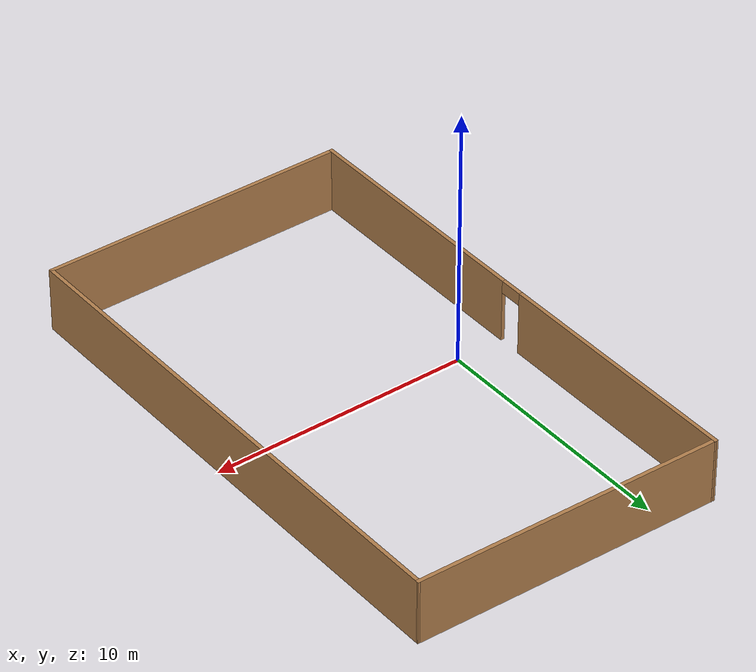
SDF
<?xml version='1.0'?>
<sdf version='1.7'>
  <model name='world_v1'>
    <pose>3.96468 0.542724 0 0 -0 0</pose>
    <link name='Wall_15'>
      <pose>-5.925 -0.000782 0 0 -0 -1.5708</pose>
      <visual name='Wall_15_Visual_0'>
        <pose>-5.35453 0 1.25 0 -0 0</pose>
        <geometry>
          <box>
            <size>10.0409 0.15 2.5</size>
          </box>
        </geometry>
        <material>
          <script>
            <uri>file://media/materials/scripts/gazebo.material</uri>
            <name>Gazebo/Wood</name>
          </script>
          <ambient>1 1 1 1</ambient>
        </material>
        <meta>
          <layer>0</layer>
        </meta>
      </visual>
      <collision name='Wall_15_Collision_0'>
        <geometry>
          <box>
            <size>10.0409 0.15 2.5</size>
          </box>
        </geometry>
        <pose>-5.35453 0 1.25 0 -0 0</pose>
      </collision>
      <visual name='Wall_15_Visual_1'>
        <pose>5.47047 0 1.25 0 -0 0</pose>
        <geometry>
          <box>
            <size>9.80906 0.15 2.5</size>
          </box>
        </geometry>
        <material>
          <script>
            <uri>file://media/materials/scripts/gazebo.material</uri>
            <name>Gazebo/Wood</name>
          </script>
          <ambient>1 1 1 1</ambient>
        </material>
        <meta>
          <layer>0</layer>
        </meta>
      </visual>
      <collision name='Wall_15_Collision_1'>
        <geometry>
          <box>
            <size>9.80906 0.15 2.5</size>
          </box>
        </geometry>
        <pose>5.47047 0 1.25 0 -0 0</pose>
      </collision>
      <visual name='Wall_15_Visual_2'>
        <pose>0.115942 0 2.25 0 -0 0</pose>
        <geometry>
          <box>
            <size>0.9 0.15 0.5</size>
          </box>
        </geometry>
        <material>
          <script>
            <uri>file://media/materials/scripts/gazebo.material</uri>
            <name>Gazebo/Wood</name>
          </script>
          <ambient>1 1 1 1</ambient>
        </material>
        <meta>
          <layer>0</layer>
        </meta>
      </visual>
      <collision name='Wall_15_Collision_2'>
        <geometry>
          <box>
            <size>0.9 0.15 0.5</size>
          </box>
        </geometry>
        <pose>0.115942 0 2.25 0 -0 0</pose>
      </collision>
    </link>
    <link name='Wall_16'>
      <collision name='Wall_16_Collision'>
        <geometry>
          <box>
            <size>12 0.15 2.5</size>
          </box>
        </geometry>
        <pose>0 0 1.25 0 -0 0</pose>
      </collision>
      <visual name='Wall_16_Visual'>
        <pose>0 0 1.25 0 -0 0</pose>
        <geometry>
          <box>
            <size>12 0.15 2.5</size>
          </box>
        </geometry>
        <material>
          <script>
            <uri>file://media/materials/scripts/gazebo.material</uri>
            <name>Gazebo/Wood</name>
          </script>
          <ambient>1 1 1 1</ambient>
        </material>
        <meta>
          <layer>0</layer>
        </meta>
      </visual>
      <pose>0 -10.3008 0 0 -0 0</pose>
    </link>
    <link name='Wall_17'>
      <collision name='Wall_17_Collision'>
        <geometry>
          <box>
            <size>20.5 0.15 2.5</size>
          </box>
        </geometry>
        <pose>0 0 1.25 0 -0 0</pose>
      </collision>
      <visual name='Wall_17_Visual'>
        <pose>0 0 1.25 0 -0 0</pose>
        <geometry>
          <box>
            <size>20.5 0.15 2.5</size>
          </box>
        </geometry>
        <material>
          <script>
            <uri>file://media/materials/scripts/gazebo.material</uri>
            <name>Gazebo/Wood</name>
          </script>
          <ambient>1 1 1 1</ambient>
        </material>
        <meta>
          <layer>0</layer>
        </meta>
      </visual>
      <pose>5.925 -0.125782 0 0 -0 1.5708</pose>
    </link>
    <link name='Wall_18'>
      <collision name='Wall_18_Collision'>
        <geometry>
          <box>
            <size>12.0026 0.15 2.5</size>
          </box>
        </geometry>
        <pose>0 0 1.25 0 -0 0</pose>
      </collision>
      <visual name='Wall_18_Visual'>
        <pose>0 0 1.25 0 -0 0</pose>
        <geometry>
          <box>
            <size>12.0026 0.15 2.5</size>
          </box>
        </geometry>
        <material>
          <script>
            <uri>file://media/materials/scripts/gazebo.material</uri>
            <name>Gazebo/Wood</name>
          </script>
          <ambient>1 1 1 1</ambient>
        </material>
        <meta>
          <layer>0</layer>
        </meta>
      </visual>
      <pose>0 10.1742 0 0 -0 3.1205</pose>
    </link>
    <static>1</static>
  </model>
</sdf>
